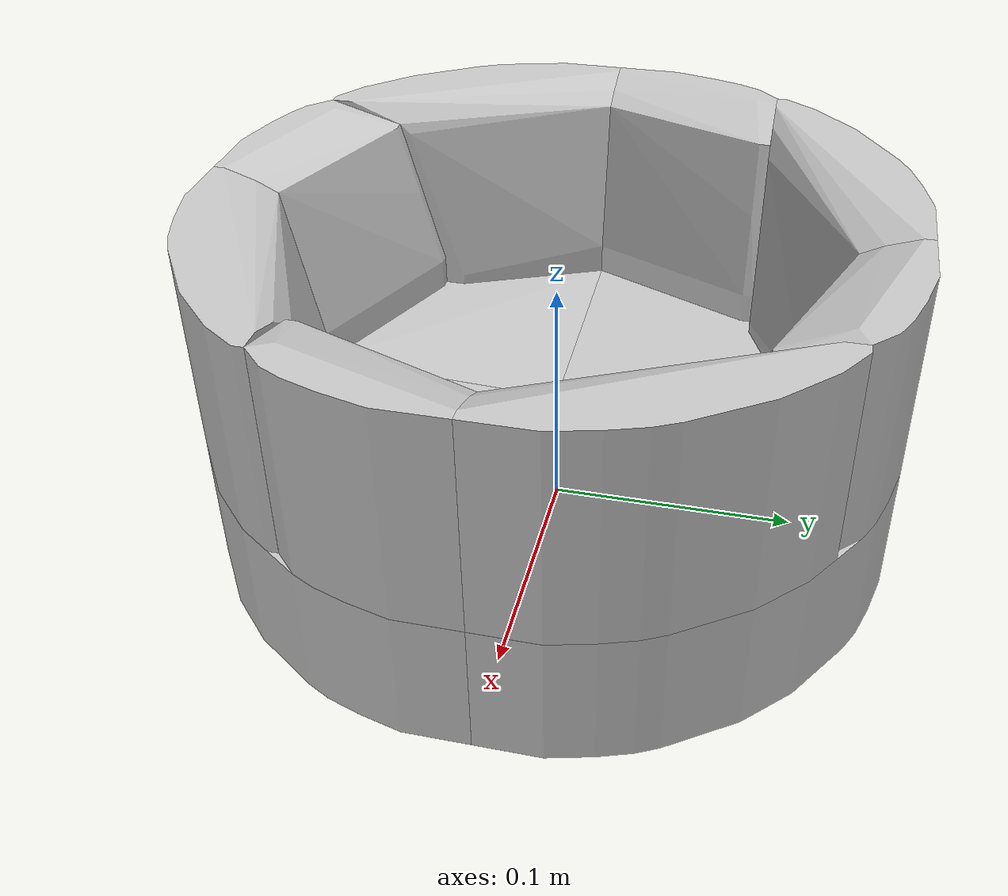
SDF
<?xml version='1.0'?>
<sdf version="1.4">
  <model name="bowl">
    <link name="bowl_link">
      <inertial>
        <mass>1.0</mass>
        <inertia> <!-- inertias are tricky to compute -->
          <!-- http://gazebosim.org/tutorials?tut=inertia&cat=build_robot -->
          <ixx>0.083</ixx>       <!-- for a box: ixx = 0.083 * mass * (y*y + z*z) -->
          <ixy>0.0</ixy>         <!-- for a box: ixy = 0 -->
          <ixz>0.0</ixz>         <!-- for a box: ixz = 0 -->
          <iyy>0.083</iyy>       <!-- for a box: iyy = 0.083 * mass * (x*x + z*z) -->
          <iyz>0.0</iyz>         <!-- for a box: iyz = 0 -->
          <izz>0.083</izz>       <!-- for a box: izz = 0.083 * mass * (x*x + y*y) -->
        </inertia>
      </inertial>
      <collision name="collision">
        <geometry>
          <mesh>
            <scale>1 1 1</scale>
            <drake:declare_convex/>
            <uri>meshes/obj/1.obj</uri>
          </mesh>
        </geometry>
      </collision>
      <visual name="visual">
        <geometry>
          <mesh>
            <scale>1 1 1</scale>
            <uri>meshes/obj/1.obj</uri>
          </mesh>
        </geometry>
        <material>
          <diffuse>0.78 0.78 0.78 1</diffuse>
        </material>
      </visual>
    </link>

    <link name="bowl_link_1">
      <inertial>
        <mass>1.0</mass>
        <inertia> <!-- inertias are tricky to compute -->
          <!-- http://gazebosim.org/tutorials?tut=inertia&cat=build_robot -->
          <ixx>0.083</ixx>       <!-- for a box: ixx = 0.083 * mass * (y*y + z*z) -->
          <ixy>0.0</ixy>         <!-- for a box: ixy = 0 -->
          <ixz>0.0</ixz>         <!-- for a box: ixz = 0 -->
          <iyy>0.083</iyy>       <!-- for a box: iyy = 0.083 * mass * (x*x + z*z) -->
          <iyz>0.0</iyz>         <!-- for a box: iyz = 0 -->
          <izz>0.083</izz>       <!-- for a box: izz = 0.083 * mass * (x*x + y*y) -->
        </inertia>
      </inertial>
      <collision name="collision">
        <geometry>

          <mesh>
            <scale>1 1 1</scale>
            <drake:declare_convex/>
            <uri>meshes/obj/2.obj</uri>
          </mesh>
        </geometry>
      </collision>
      <visual name="visual">
        <geometry>
          <mesh>
            <scale>1 1 1</scale>
            <uri>meshes/obj/2.obj</uri>
          </mesh>
        </geometry>
        <material>
          <diffuse>0.78 0.78 0.78 1</diffuse>
        </material>
      </visual>
    </link>

    <link name="bowl_link_2">
      <inertial>
        <mass>1.0</mass>
        <inertia> <!-- inertias are tricky to compute -->
          <!-- http://gazebosim.org/tutorials?tut=inertia&cat=build_robot -->
          <ixx>0.083</ixx>       <!-- for a box: ixx = 0.083 * mass * (y*y + z*z) -->
          <ixy>0.0</ixy>         <!-- for a box: ixy = 0 -->
          <ixz>0.0</ixz>         <!-- for a box: ixz = 0 -->
          <iyy>0.083</iyy>       <!-- for a box: iyy = 0.083 * mass * (x*x + z*z) -->
          <iyz>0.0</iyz>         <!-- for a box: iyz = 0 -->
          <izz>0.083</izz>       <!-- for a box: izz = 0.083 * mass * (x*x + y*y) -->
        </inertia>
      </inertial>
      <collision name="collision">
        <geometry>

          <mesh>
            <scale>1 1 1</scale>
            <drake:declare_convex/>
            <uri>meshes/obj/3.obj</uri>
          </mesh>
        </geometry>
      </collision>
      <visual name="visual">
        <geometry>
          <mesh>
            <scale>1 1 1</scale>
            <uri>meshes/obj/3.obj</uri>
          </mesh>
        </geometry>
        <material>
          <diffuse>0.78 0.78 0.78 1</diffuse>
        </material>
      </visual>
    </link>

    <link name="bowl_link_3">
      <inertial>
        <mass>1.0</mass>
        <inertia> <!-- inertias are tricky to compute -->
          <!-- http://gazebosim.org/tutorials?tut=inertia&cat=build_robot -->
          <ixx>0.083</ixx>       <!-- for a box: ixx = 0.083 * mass * (y*y + z*z) -->
          <ixy>0.0</ixy>         <!-- for a box: ixy = 0 -->
          <ixz>0.0</ixz>         <!-- for a box: ixz = 0 -->
          <iyy>0.083</iyy>       <!-- for a box: iyy = 0.083 * mass * (x*x + z*z) -->
          <iyz>0.0</iyz>         <!-- for a box: iyz = 0 -->
          <izz>0.083</izz>       <!-- for a box: izz = 0.083 * mass * (x*x + y*y) -->
        </inertia>
      </inertial>
      <collision name="collision">
        <geometry>

          <mesh>
            <scale>1 1 1</scale>
            <drake:declare_convex/>
            <uri>meshes/obj/4.obj</uri>
          </mesh>
        </geometry>
      </collision>
      <visual name="visual">
        <geometry>
          <mesh>
            <scale>1 1 1</scale>
            <uri>meshes/obj/4.obj</uri>
          </mesh>
        </geometry>
        <material>
          <diffuse>0.78 0.78 0.78 1</diffuse>
        </material>
      </visual>
    </link>

    <link name="bowl_link_4">
      <inertial>
        <mass>1.0</mass>
        <inertia> <!-- inertias are tricky to compute -->
          <!-- http://gazebosim.org/tutorials?tut=inertia&cat=build_robot -->
          <ixx>0.083</ixx>       <!-- for a box: ixx = 0.083 * mass * (y*y + z*z) -->
          <ixy>0.0</ixy>         <!-- for a box: ixy = 0 -->
          <ixz>0.0</ixz>         <!-- for a box: ixz = 0 -->
          <iyy>0.083</iyy>       <!-- for a box: iyy = 0.083 * mass * (x*x + z*z) -->
          <iyz>0.0</iyz>         <!-- for a box: iyz = 0 -->
          <izz>0.083</izz>       <!-- for a box: izz = 0.083 * mass * (x*x + y*y) -->
        </inertia>
      </inertial>
      <collision name="collision">
        <geometry>

          <mesh>
            <scale>1 1 1</scale>
            <drake:declare_convex/>
            <uri>meshes/obj/5.obj</uri>
          </mesh>
        </geometry>
      </collision>
      <visual name="visual">
        <geometry>
          <mesh>
            <scale>1 1 1</scale>
            <uri>meshes/obj/5.obj</uri>
          </mesh>
        </geometry>
        <material>
          <diffuse>0.78 0.78 0.78 1</diffuse>
        </material>
      </visual>
    </link>

    <link name="bowl_link_5">
      <inertial>
        <mass>1.0</mass>
        <inertia> <!-- inertias are tricky to compute -->
          <!-- http://gazebosim.org/tutorials?tut=inertia&cat=build_robot -->
          <ixx>0.083</ixx>       <!-- for a box: ixx = 0.083 * mass * (y*y + z*z) -->
          <ixy>0.0</ixy>         <!-- for a box: ixy = 0 -->
          <ixz>0.0</ixz>         <!-- for a box: ixz = 0 -->
          <iyy>0.083</iyy>       <!-- for a box: iyy = 0.083 * mass * (x*x + z*z) -->
          <iyz>0.0</iyz>         <!-- for a box: iyz = 0 -->
          <izz>0.083</izz>       <!-- for a box: izz = 0.083 * mass * (x*x + y*y) -->
        </inertia>
      </inertial>
      <collision name="collision">
        <geometry>

          <mesh>
            <scale>1 1 1</scale>
            <drake:declare_convex/>
            <uri>meshes/obj/6.obj</uri>
          </mesh>
        </geometry>
      </collision>
      <visual name="visual">
        <geometry>
          <mesh>
            <scale>1 1 1</scale>
            <uri>meshes/obj/6.obj</uri>
          </mesh>
        </geometry>
        <material>
          <diffuse>0.78 0.78 0.78 1</diffuse>
        </material>
      </visual>
    </link>

    <link name="bowl_link_6">
      <inertial>
        <mass>1.0</mass>
        <inertia> <!-- inertias are tricky to compute -->
          <!-- http://gazebosim.org/tutorials?tut=inertia&cat=build_robot -->
          <ixx>0.083</ixx>       <!-- for a box: ixx = 0.083 * mass * (y*y + z*z) -->
          <ixy>0.0</ixy>         <!-- for a box: ixy = 0 -->
          <ixz>0.0</ixz>         <!-- for a box: ixz = 0 -->
          <iyy>0.083</iyy>       <!-- for a box: iyy = 0.083 * mass * (x*x + z*z) -->
          <iyz>0.0</iyz>         <!-- for a box: iyz = 0 -->
          <izz>0.083</izz>       <!-- for a box: izz = 0.083 * mass * (x*x + y*y) -->
        </inertia>
      </inertial>
      <collision name="collision">
        <geometry>

          <mesh>
            <scale>1 1 1</scale>
            <drake:declare_convex/>
            <uri>meshes/obj/7.obj</uri>
          </mesh>
        </geometry>
      </collision>
      <visual name="visual">
        <geometry>
          <mesh>
            <scale>1 1 1</scale>
            <uri>meshes/obj/7.obj</uri>
          </mesh>
        </geometry>
        <material>
          <diffuse>0.78 0.78 0.78 1</diffuse>
        </material>
      </visual>
    </link>

    <link name="bowl_link_7">
      <inertial>
        <mass>1.0</mass>
        <inertia> <!-- inertias are tricky to compute -->
          <!-- http://gazebosim.org/tutorials?tut=inertia&cat=build_robot -->
          <ixx>0.083</ixx>       <!-- for a box: ixx = 0.083 * mass * (y*y + z*z) -->
          <ixy>0.0</ixy>         <!-- for a box: ixy = 0 -->
          <ixz>0.0</ixz>         <!-- for a box: ixz = 0 -->
          <iyy>0.083</iyy>       <!-- for a box: iyy = 0.083 * mass * (x*x + z*z) -->
          <iyz>0.0</iyz>         <!-- for a box: iyz = 0 -->
          <izz>0.083</izz>       <!-- for a box: izz = 0.083 * mass * (x*x + y*y) -->
        </inertia>
      </inertial>
      <collision name="collision">
        <geometry>

          <mesh>
            <scale>1 1 1</scale>
            <drake:declare_convex/>
            <uri>meshes/obj/8.obj</uri>
          </mesh>
        </geometry>
      </collision>
      <visual name="visual">
        <geometry>
          <mesh>
            <scale>1 1 1</scale>
            <uri>meshes/obj/8.obj</uri>
          </mesh>
        </geometry>
        <material>
          <diffuse>0.78 0.78 0.78 1</diffuse>
        </material>
      </visual>
    </link>

    <link name="bowl_link_8">
      <inertial>
        <mass>1.0</mass>
        <inertia> <!-- inertias are tricky to compute -->
          <!-- http://gazebosim.org/tutorials?tut=inertia&cat=build_robot -->
          <ixx>0.083</ixx>       <!-- for a box: ixx = 0.083 * mass * (y*y + z*z) -->
          <ixy>0.0</ixy>         <!-- for a box: ixy = 0 -->
          <ixz>0.0</ixz>         <!-- for a box: ixz = 0 -->
          <iyy>0.083</iyy>       <!-- for a box: iyy = 0.083 * mass * (x*x + z*z) -->
          <iyz>0.0</iyz>         <!-- for a box: iyz = 0 -->
          <izz>0.083</izz>       <!-- for a box: izz = 0.083 * mass * (x*x + y*y) -->
        </inertia>
      </inertial>
      <collision name="collision">
        <geometry>

          <mesh>
            <scale>1 1 1</scale>
            <drake:declare_convex/>
            <uri>meshes/obj/9.obj</uri>
          </mesh>
        </geometry>
      </collision>
      <visual name="visual">
        <geometry>
          <mesh>
            <scale>1 1 1</scale>
            <uri>meshes/obj/9.obj</uri>
          </mesh>
        </geometry>
        <material>
          <diffuse>0.78 0.78 0.78 1</diffuse>
        </material>
      </visual>
    </link>

    <link name="bowl_link_9">
      <inertial>
        <mass>1.0</mass>
        <inertia> <!-- inertias are tricky to compute -->
          <!-- http://gazebosim.org/tutorials?tut=inertia&cat=build_robot -->
          <ixx>0.083</ixx>       <!-- for a box: ixx = 0.083 * mass * (y*y + z*z) -->
          <ixy>0.0</ixy>         <!-- for a box: ixy = 0 -->
          <ixz>0.0</ixz>         <!-- for a box: ixz = 0 -->
          <iyy>0.083</iyy>       <!-- for a box: iyy = 0.083 * mass * (x*x + z*z) -->
          <iyz>0.0</iyz>         <!-- for a box: iyz = 0 -->
          <izz>0.083</izz>       <!-- for a box: izz = 0.083 * mass * (x*x + y*y) -->
        </inertia>
      </inertial>
      <collision name="collision">
        <geometry>

          <mesh>
            <scale>1 1 1</scale>
            <drake:declare_convex/>
            <uri>meshes/obj/10.obj</uri>
          </mesh>
        </geometry>
      </collision>
      <visual name="visual">
        <geometry>
          <mesh>
            <scale>1 1 1</scale>
            <uri>meshes/obj/10.obj</uri>
          </mesh>
        </geometry>
        <material>
          <diffuse>0.78 0.78 0.78 1</diffuse>
        </material>
      </visual>
    </link>

    <link name="bowl_link_10">
      <inertial>
        <mass>1.0</mass>
        <inertia> <!-- inertias are tricky to compute -->
          <!-- http://gazebosim.org/tutorials?tut=inertia&cat=build_robot -->
          <ixx>0.083</ixx>       <!-- for a box: ixx = 0.083 * mass * (y*y + z*z) -->
          <ixy>0.0</ixy>         <!-- for a box: ixy = 0 -->
          <ixz>0.0</ixz>         <!-- for a box: ixz = 0 -->
          <iyy>0.083</iyy>       <!-- for a box: iyy = 0.083 * mass * (x*x + z*z) -->
          <iyz>0.0</iyz>         <!-- for a box: iyz = 0 -->
          <izz>0.083</izz>       <!-- for a box: izz = 0.083 * mass * (x*x + y*y) -->
        </inertia>
      </inertial>
      <collision name="collision">
        <geometry>

          <mesh>
            <scale>1 1 1</scale>
            <drake:declare_convex/>
            <uri>meshes/obj/11.obj</uri>
          </mesh>
        </geometry>
      </collision>
      <visual name="visual">
        <geometry>
          <mesh>
            <scale>1 1 1</scale>
            <uri>meshes/obj/11.obj</uri>
          </mesh>
        </geometry>
        <material>
          <diffuse>0.78 0.78 0.78 1</diffuse>
        </material>
      </visual>
    </link>

    <link name="bowl_link_11">
      <inertial>
        <mass>1.0</mass>
        <inertia> <!-- inertias are tricky to compute -->
          <!-- http://gazebosim.org/tutorials?tut=inertia&cat=build_robot -->
          <ixx>0.083</ixx>       <!-- for a box: ixx = 0.083 * mass * (y*y + z*z) -->
          <ixy>0.0</ixy>         <!-- for a box: ixy = 0 -->
          <ixz>0.0</ixz>         <!-- for a box: ixz = 0 -->
          <iyy>0.083</iyy>       <!-- for a box: iyy = 0.083 * mass * (x*x + z*z) -->
          <iyz>0.0</iyz>         <!-- for a box: iyz = 0 -->
          <izz>0.083</izz>       <!-- for a box: izz = 0.083 * mass * (x*x + y*y) -->
        </inertia>
      </inertial>
      <collision name="collision">
        <geometry>

          <mesh>
            <scale>1 1 1</scale>
            <drake:declare_convex/>
            <uri>meshes/obj/12.obj</uri>
          </mesh>
        </geometry>
      </collision>
      <visual name="visual">
        <geometry>
          <mesh>
            <scale>1 1 1</scale>
            <uri>meshes/obj/12.obj</uri>
          </mesh>
        </geometry>
        <material>
          <diffuse>0.78 0.78 0.78 1</diffuse>
        </material>
      </visual>
    </link>

    <joint name="joint_1" type="fixed">
      <parent>bowl_link</parent>
      <child>bowl_link_1</child>
    </joint>
    <joint name="joint_2" type="fixed">
      <parent>bowl_link_1</parent>
      <child>bowl_link_2</child>
    </joint>
    <joint name="joint_3" type="fixed">
      <parent>bowl_link_2</parent>
      <child>bowl_link_3</child>
    </joint>
    <joint name="joint_4" type="fixed">
      <parent>bowl_link_3</parent>
      <child>bowl_link_4</child>
    </joint>
    <joint name="joint_5" type="fixed">
      <parent>bowl_link_4</parent>
      <child>bowl_link_5</child>
    </joint>
    <joint name="joint_6" type="fixed">
      <parent>bowl_link_5</parent>
      <child>bowl_link_6</child>
    </joint>
    <joint name="joint_7" type="fixed">
      <parent>bowl_link_6</parent>
      <child>bowl_link_7</child>
    </joint>
    <joint name="joint_8" type="fixed">
      <parent>bowl_link_7</parent>
      <child>bowl_link_8</child>
    </joint>
    <joint name="joint_9" type="fixed">
      <parent>bowl_link_8</parent>
      <child>bowl_link_9</child>
    </joint>
    <joint name="joint_10" type="fixed">
      <parent>bowl_link_9</parent>
      <child>bowl_link_10</child>
    </joint>
    <joint name="joint_11" type="fixed">
      <parent>bowl_link_10</parent>
      <child>bowl_link_11</child>
    </joint>

  </model>
</sdf>
